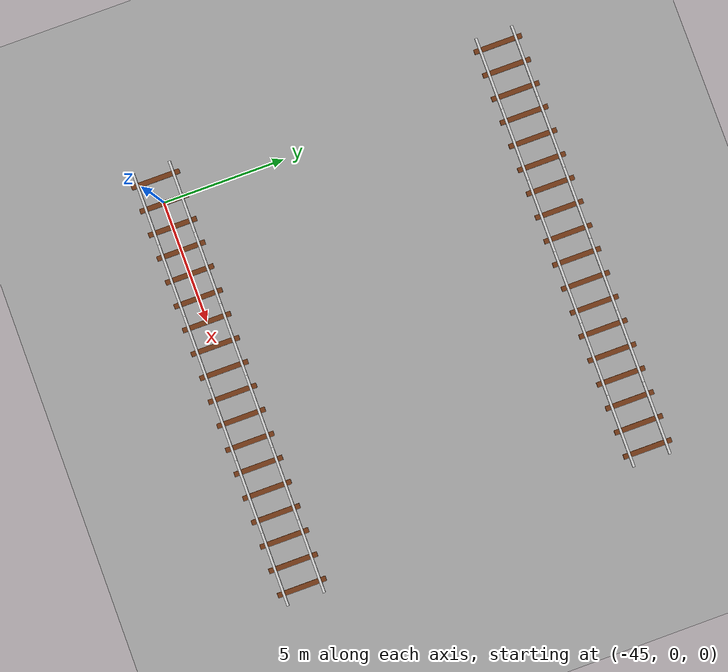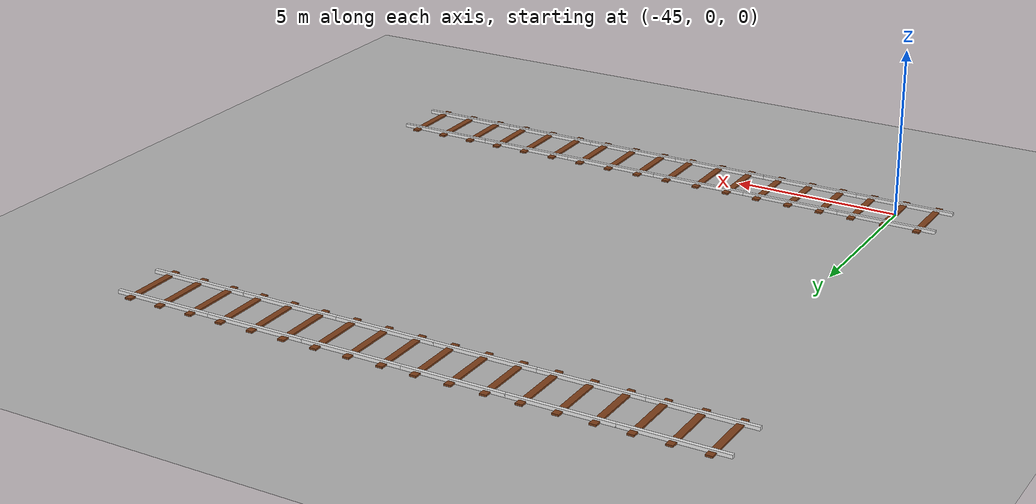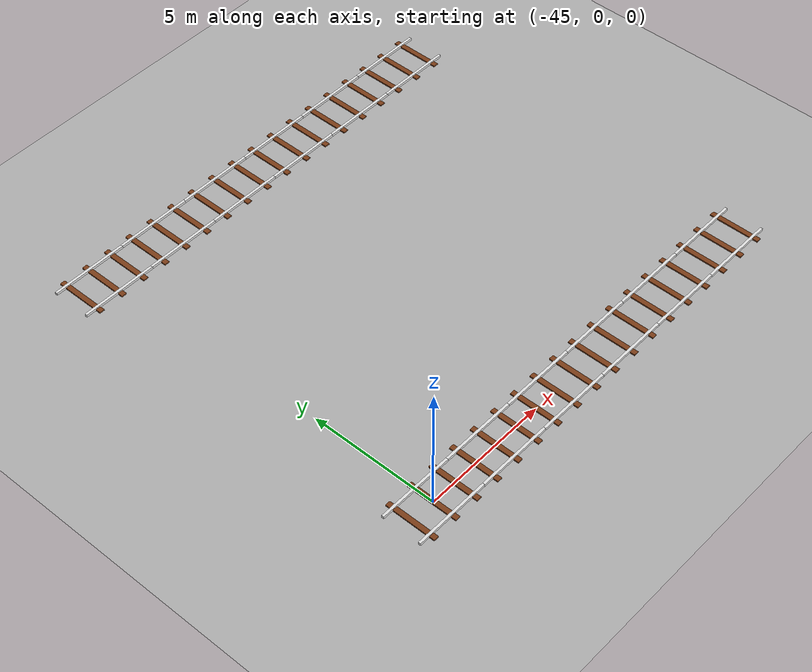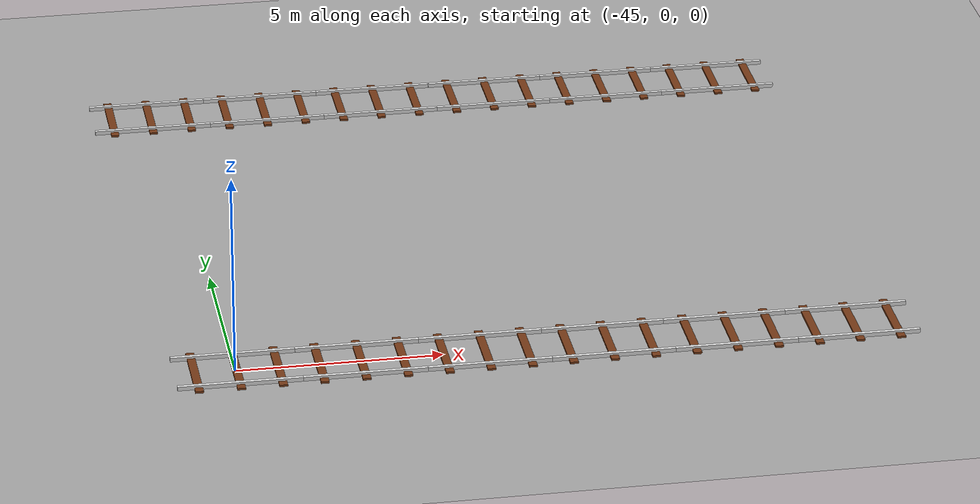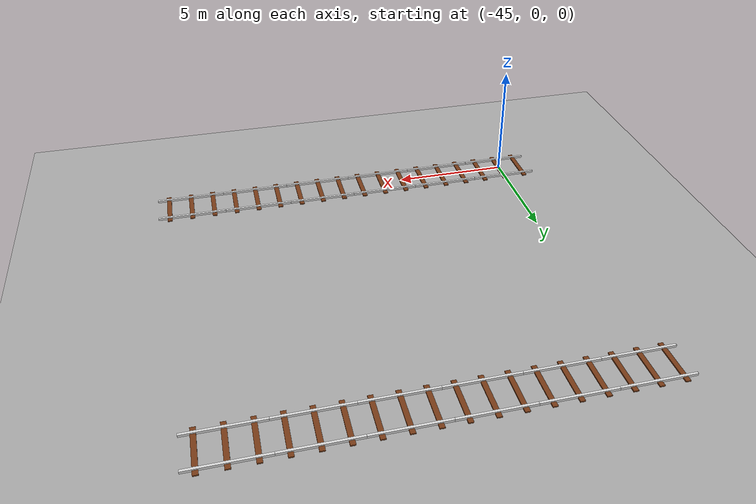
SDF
<sdf version="1.10">
 <world name="myworld">
  <model name="rail-1">
   <static>true</static>
   <pose>-36 0 0 0 0 0</pose>
   <link name="rail_link">
    <visual name="rail_left">
     <pose>0 0.75 0.050000000000000003 0 0 0</pose>
     <geometry><box><size>3 0.10000000000000001 0.10000000000000001</size></box></geometry>
     <material>
      <ambient>0.800000012 0.800000012 0.800000012 1</ambient>
      <diffuse>0.899999976 0.899999976 0.899999976 1</diffuse>
     </material>
    </visual>
    <visual name="rail_right">
     <pose>0 -0.75 0.050000000000000003 0 0 0</pose>
     <geometry><box><size>3 0.10000000000000001 0.10000000000000001</size></box></geometry>
     <material>
      <ambient>0.800000012 0.800000012 0.800000012 1</ambient>
      <diffuse>0.899999976 0.899999976 0.899999976 1</diffuse>
     </material>
    </visual>
    <visual name="traverse_1">
     <pose>1 0 0.025000000000000001 0 0 0</pose>
     <geometry><box><size>0.20000000000000001 2 0.050000000000000003</size></box></geometry>
     <material>
      <ambient>0.400000006 0.200000003 0.100000001 1</ambient>
      <diffuse>0.5 0.25 0.100000001 1</diffuse>
     </material>
    </visual>
    <visual name="traverse_2">
     <pose>0 0 0.025000000000000001 0 0 0</pose>
     <geometry><box><size>0.20000000000000001 2 0.050000000000000003</size></box></geometry>
     <material>
      <ambient>0.400000006 0.200000003 0.100000001 1</ambient>
      <diffuse>0.5 0.25 0.100000001 1</diffuse>
     </material>
    </visual>
    <visual name="traverse_3">
     <pose>-1 0 0.025000000000000001 0 0 0</pose>
     <geometry><box><size>0.20000000000000001 2 0.050000000000000003</size></box></geometry>
     <material>
      <ambient>0.400000006 0.200000003 0.100000001 1</ambient>
      <diffuse>0.5 0.25 0.100000001 1</diffuse>
     </material>
    </visual>
    <inertial>
     <mass>1</mass>
     <inertia><ixx>1</ixx><ixy>0</ixy><ixz>0</ixz><iyy>1</iyy><iyz>0</iyz><izz>1</izz></inertia>
    </inertial>
   </link>
  </model>
  <model name="rail-11">
   <static>true</static>
   <pose>-30 0 0 0 0 0</pose>
   <link name="rail_link">
    <visual name="rail_left">
     <pose>0 0.75 0.050000000000000003 0 0 0</pose>
     <geometry><box><size>3 0.10000000000000001 0.10000000000000001</size></box></geometry>
     <material>
      <ambient>0.800000012 0.800000012 0.800000012 1</ambient>
      <diffuse>0.899999976 0.899999976 0.899999976 1</diffuse>
     </material>
    </visual>
    <visual name="rail_right">
     <pose>0 -0.75 0.050000000000000003 0 0 0</pose>
     <geometry><box><size>3 0.10000000000000001 0.10000000000000001</size></box></geometry>
     <material>
      <ambient>0.800000012 0.800000012 0.800000012 1</ambient>
      <diffuse>0.899999976 0.899999976 0.899999976 1</diffuse>
     </material>
    </visual>
    <visual name="traverse_1">
     <pose>1 0 0.025000000000000001 0 0 0</pose>
     <geometry><box><size>0.20000000000000001 2 0.050000000000000003</size></box></geometry>
     <material>
      <ambient>0.400000006 0.200000003 0.100000001 1</ambient>
      <diffuse>0.5 0.25 0.100000001 1</diffuse>
     </material>
    </visual>
    <visual name="traverse_2">
     <pose>0 0 0.025000000000000001 0 0 0</pose>
     <geometry><box><size>0.20000000000000001 2 0.050000000000000003</size></box></geometry>
     <material>
      <ambient>0.400000006 0.200000003 0.100000001 1</ambient>
      <diffuse>0.5 0.25 0.100000001 1</diffuse>
     </material>
    </visual>
    <visual name="traverse_3">
     <pose>-1 0 0.025000000000000001 0 0 0</pose>
     <geometry><box><size>0.20000000000000001 2 0.050000000000000003</size></box></geometry>
     <material>
      <ambient>0.400000006 0.200000003 0.100000001 1</ambient>
      <diffuse>0.5 0.25 0.100000001 1</diffuse>
     </material>
    </visual>
    <inertial>
     <mass>1</mass>
     <inertia><ixx>1</ixx><ixy>0</ixy><ixz>0</ixz><iyy>1</iyy><iyz>0</iyz><izz>1</izz></inertia>
    </inertial>
   </link>
  </model>
  <model name="rail-12">
   <static>true</static>
   <pose>-33 0 0 0 0 0</pose>
   <link name="rail_link">
    <visual name="rail_left">
     <pose>0 0.75 0.050000000000000003 0 0 0</pose>
     <geometry><box><size>3 0.10000000000000001 0.10000000000000001</size></box></geometry>
     <material>
      <ambient>0.800000012 0.800000012 0.800000012 1</ambient>
      <diffuse>0.899999976 0.899999976 0.899999976 1</diffuse>
     </material>
    </visual>
    <visual name="rail_right">
     <pose>0 -0.75 0.050000000000000003 0 0 0</pose>
     <geometry><box><size>3 0.10000000000000001 0.10000000000000001</size></box></geometry>
     <material>
      <ambient>0.800000012 0.800000012 0.800000012 1</ambient>
      <diffuse>0.899999976 0.899999976 0.899999976 1</diffuse>
     </material>
    </visual>
    <visual name="traverse_1">
     <pose>1 0 0.025000000000000001 0 0 0</pose>
     <geometry><box><size>0.20000000000000001 2 0.050000000000000003</size></box></geometry>
     <material>
      <ambient>0.400000006 0.200000003 0.100000001 1</ambient>
      <diffuse>0.5 0.25 0.100000001 1</diffuse>
     </material>
    </visual>
    <visual name="traverse_2">
     <pose>0 0 0.025000000000000001 0 0 0</pose>
     <geometry><box><size>0.20000000000000001 2 0.050000000000000003</size></box></geometry>
     <material>
      <ambient>0.400000006 0.200000003 0.100000001 1</ambient>
      <diffuse>0.5 0.25 0.100000001 1</diffuse>
     </material>
    </visual>
    <visual name="traverse_3">
     <pose>-1 0 0.025000000000000001 0 0 0</pose>
     <geometry><box><size>0.20000000000000001 2 0.050000000000000003</size></box></geometry>
     <material>
      <ambient>0.400000006 0.200000003 0.100000001 1</ambient>
      <diffuse>0.5 0.25 0.100000001 1</diffuse>
     </material>
    </visual>
    <inertial>
     <mass>1</mass>
     <inertia><ixx>1</ixx><ixy>0</ixy><ixz>0</ixz><iyy>1</iyy><iyz>0</iyz><izz>1</izz></inertia>
    </inertial>
   </link>
  </model>
  <model name="ground_plane">
   <static>true</static>
   <link name="link">
    <collision name="collision">
     <geometry><plane><normal>0 0 1</normal><size>1000 1000</size></plane></geometry>
    </collision>
    <visual name="visual">
     <geometry><plane><normal>0 0 1</normal><size>1000 1000</size></plane></geometry>
     <material>
      <ambient>0.699999988 0.699999988 0.699999988 1</ambient>
      <diffuse>0.699999988 0.699999988 0.699999988 1</diffuse>
     </material>
    </visual>
    <inertial>
     <mass>1</mass>
     <inertia><ixx>1</ixx><ixy>0</ixy><ixz>0</ixz><iyy>1</iyy><iyz>0</iyz><izz>1</izz></inertia>
    </inertial>
   </link>
  </model>
  <model name="rail1_7_2_13">
   <static>true</static>
   <pose>-30.438199999999998 14.5296200000000004 0 0 0 0</pose>
   <link name="rail_link">
    <visual name="rail_left">
     <pose>0 0.75 0.050000000000000003 0 0 0</pose>
     <geometry><box><size>3 0.10000000000000001 0.10000000000000001</size></box></geometry>
     <material>
      <ambient>0.800000012 0.800000012 0.800000012 1</ambient>
      <diffuse>0.899999976 0.899999976 0.899999976 1</diffuse>
     </material>
    </visual>
    <visual name="rail_right">
     <pose>0 -0.75 0.050000000000000003 0 0 0</pose>
     <geometry><box><size>3 0.10000000000000001 0.10000000000000001</size></box></geometry>
     <material>
      <ambient>0.800000012 0.800000012 0.800000012 1</ambient>
      <diffuse>0.899999976 0.899999976 0.899999976 1</diffuse>
     </material>
    </visual>
    <visual name="traverse_1">
     <pose>1 0 0.025000000000000001 0 0 0</pose>
     <geometry><box><size>0.20000000000000001 2 0.050000000000000003</size></box></geometry>
     <material>
      <ambient>0.400000006 0.200000003 0.100000001 1</ambient>
      <diffuse>0.5 0.25 0.100000001 1</diffuse>
     </material>
    </visual>
    <visual name="traverse_2">
     <pose>0 0 0.025000000000000001 0 0 0</pose>
     <geometry><box><size>0.20000000000000001 2 0.050000000000000003</size></box></geometry>
     <material>
      <ambient>0.400000006 0.200000003 0.100000001 1</ambient>
      <diffuse>0.5 0.25 0.100000001 1</diffuse>
     </material>
    </visual>
    <visual name="traverse_3">
     <pose>-1 0 0.025000000000000001 0 0 0</pose>
     <geometry><box><size>0.20000000000000001 2 0.050000000000000003</size></box></geometry>
     <material>
      <ambient>0.400000006 0.200000003 0.100000001 1</ambient>
      <diffuse>0.5 0.25 0.100000001 1</diffuse>
     </material>
    </visual>
   </link>
  </model>
  <model name="rail1_7_2_14">
   <static>true</static>
   <pose>-33.431399999999996 14.5290800000000004 0 0 0 0</pose>
   <link name="rail_link">
    <visual name="rail_left">
     <pose>0 0.75 0.050000000000000003 0 0 0</pose>
     <geometry><box><size>3 0.10000000000000001 0.10000000000000001</size></box></geometry>
     <material>
      <ambient>0.800000012 0.800000012 0.800000012 1</ambient>
      <diffuse>0.899999976 0.899999976 0.899999976 1</diffuse>
     </material>
    </visual>
    <visual name="rail_right">
     <pose>0 -0.75 0.050000000000000003 0 0 0</pose>
     <geometry><box><size>3 0.10000000000000001 0.10000000000000001</size></box></geometry>
     <material>
      <ambient>0.800000012 0.800000012 0.800000012 1</ambient>
      <diffuse>0.899999976 0.899999976 0.899999976 1</diffuse>
     </material>
    </visual>
    <visual name="traverse_1">
     <pose>1 0 0.025000000000000001 0 0 0</pose>
     <geometry><box><size>0.20000000000000001 2 0.050000000000000003</size></box></geometry>
     <material>
      <ambient>0.400000006 0.200000003 0.100000001 1</ambient>
      <diffuse>0.5 0.25 0.100000001 1</diffuse>
     </material>
    </visual>
    <visual name="traverse_2">
     <pose>0 0 0.025000000000000001 0 0 0</pose>
     <geometry><box><size>0.20000000000000001 2 0.050000000000000003</size></box></geometry>
     <material>
      <ambient>0.400000006 0.200000003 0.100000001 1</ambient>
      <diffuse>0.5 0.25 0.100000001 1</diffuse>
     </material>
    </visual>
    <visual name="traverse_3">
     <pose>-1 0 0.025000000000000001 0 0 0</pose>
     <geometry><box><size>0.20000000000000001 2 0.050000000000000003</size></box></geometry>
     <material>
      <ambient>0.400000006 0.200000003 0.100000001 1</ambient>
      <diffuse>0.5 0.25 0.100000001 1</diffuse>
     </material>
    </visual>
   </link>
  </model>
  <model name="rail1_7_2_15">
   <static>true</static>
   <pose>-36.427700000000002 14.5297599999999996 0 0 0 0</pose>
   <link name="rail_link">
    <visual name="rail_left">
     <pose>0 0.75 0.050000000000000003 0 0 0</pose>
     <geometry><box><size>3 0.10000000000000001 0.10000000000000001</size></box></geometry>
     <material>
      <ambient>0.800000012 0.800000012 0.800000012 1</ambient>
      <diffuse>0.899999976 0.899999976 0.899999976 1</diffuse>
     </material>
    </visual>
    <visual name="rail_right">
     <pose>0 -0.75 0.050000000000000003 0 0 0</pose>
     <geometry><box><size>3 0.10000000000000001 0.10000000000000001</size></box></geometry>
     <material>
      <ambient>0.800000012 0.800000012 0.800000012 1</ambient>
      <diffuse>0.899999976 0.899999976 0.899999976 1</diffuse>
     </material>
    </visual>
    <visual name="traverse_1">
     <pose>1 0 0.025000000000000001 0 0 0</pose>
     <geometry><box><size>0.20000000000000001 2 0.050000000000000003</size></box></geometry>
     <material>
      <ambient>0.400000006 0.200000003 0.100000001 1</ambient>
      <diffuse>0.5 0.25 0.100000001 1</diffuse>
     </material>
    </visual>
    <visual name="traverse_2">
     <pose>0 0 0.025000000000000001 0 0 0</pose>
     <geometry><box><size>0.20000000000000001 2 0.050000000000000003</size></box></geometry>
     <material>
      <ambient>0.400000006 0.200000003 0.100000001 1</ambient>
      <diffuse>0.5 0.25 0.100000001 1</diffuse>
     </material>
    </visual>
    <visual name="traverse_3">
     <pose>-1 0 0.025000000000000001 0 0 0</pose>
     <geometry><box><size>0.20000000000000001 2 0.050000000000000003</size></box></geometry>
     <material>
      <ambient>0.400000006 0.200000003 0.100000001 1</ambient>
      <diffuse>0.5 0.25 0.100000001 1</diffuse>
     </material>
    </visual>
   </link>
  </model>
  <model name="rail1_7_2_16">
   <static>true</static>
   <pose>-39.4193 14.5312700000000001 0 0 0 0</pose>
   <link name="rail_link">
    <visual name="rail_left">
     <pose>0 0.75 0.050000000000000003 0 0 0</pose>
     <geometry><box><size>3 0.10000000000000001 0.10000000000000001</size></box></geometry>
     <material>
      <ambient>0.800000012 0.800000012 0.800000012 1</ambient>
      <diffuse>0.899999976 0.899999976 0.899999976 1</diffuse>
     </material>
    </visual>
    <visual name="rail_right">
     <pose>0 -0.75 0.050000000000000003 0 0 0</pose>
     <geometry><box><size>3 0.10000000000000001 0.10000000000000001</size></box></geometry>
     <material>
      <ambient>0.800000012 0.800000012 0.800000012 1</ambient>
      <diffuse>0.899999976 0.899999976 0.899999976 1</diffuse>
     </material>
    </visual>
    <visual name="traverse_1">
     <pose>1 0 0.025000000000000001 0 0 0</pose>
     <geometry><box><size>0.20000000000000001 2 0.050000000000000003</size></box></geometry>
     <material>
      <ambient>0.400000006 0.200000003 0.100000001 1</ambient>
      <diffuse>0.5 0.25 0.100000001 1</diffuse>
     </material>
    </visual>
    <visual name="traverse_2">
     <pose>0 0 0.025000000000000001 0 0 0</pose>
     <geometry><box><size>0.20000000000000001 2 0.050000000000000003</size></box></geometry>
     <material>
      <ambient>0.400000006 0.200000003 0.100000001 1</ambient>
      <diffuse>0.5 0.25 0.100000001 1</diffuse>
     </material>
    </visual>
    <visual name="traverse_3">
     <pose>-1 0 0.025000000000000001 0 0 0</pose>
     <geometry><box><size>0.20000000000000001 2 0.050000000000000003</size></box></geometry>
     <material>
      <ambient>0.400000006 0.200000003 0.100000001 1</ambient>
      <diffuse>0.5 0.25 0.100000001 1</diffuse>
     </material>
    </visual>
   </link>
  </model>
  <model name="rail1_7_2_17">
   <static>true</static>
   <pose>-38.991500000000002 -0.00104874 0 0 0 0</pose>
   <link name="rail_link">
    <visual name="rail_left">
     <pose>0 0.75 0.050000000000000003 0 0 0</pose>
     <geometry><box><size>3 0.10000000000000001 0.10000000000000001</size></box></geometry>
     <material>
      <ambient>0.800000012 0.800000012 0.800000012 1</ambient>
      <diffuse>0.899999976 0.899999976 0.899999976 1</diffuse>
     </material>
    </visual>
    <visual name="rail_right">
     <pose>0 -0.75 0.050000000000000003 0 0 0</pose>
     <geometry><box><size>3 0.10000000000000001 0.10000000000000001</size></box></geometry>
     <material>
      <ambient>0.800000012 0.800000012 0.800000012 1</ambient>
      <diffuse>0.899999976 0.899999976 0.899999976 1</diffuse>
     </material>
    </visual>
    <visual name="traverse_1">
     <pose>1 0 0.025000000000000001 0 0 0</pose>
     <geometry><box><size>0.20000000000000001 2 0.050000000000000003</size></box></geometry>
     <material>
      <ambient>0.400000006 0.200000003 0.100000001 1</ambient>
      <diffuse>0.5 0.25 0.100000001 1</diffuse>
     </material>
    </visual>
    <visual name="traverse_2">
     <pose>0 0 0.025000000000000001 0 0 0</pose>
     <geometry><box><size>0.20000000000000001 2 0.050000000000000003</size></box></geometry>
     <material>
      <ambient>0.400000006 0.200000003 0.100000001 1</ambient>
      <diffuse>0.5 0.25 0.100000001 1</diffuse>
     </material>
    </visual>
    <visual name="traverse_3">
     <pose>-1 0 0.025000000000000001 0 0 0</pose>
     <geometry><box><size>0.20000000000000001 2 0.050000000000000003</size></box></geometry>
     <material>
      <ambient>0.400000006 0.200000003 0.100000001 1</ambient>
      <diffuse>0.5 0.25 0.100000001 1</diffuse>
     </material>
    </visual>
   </link>
  </model>
  <model name="rail1_7_2_18">
   <static>true</static>
   <pose>-42.418199999999999 14.5311199999999996 0 0 0 0</pose>
   <link name="rail_link">
    <visual name="rail_left">
     <pose>0 0.75 0.050000000000000003 0 0 0</pose>
     <geometry><box><size>3 0.10000000000000001 0.10000000000000001</size></box></geometry>
     <material>
      <ambient>0.800000012 0.800000012 0.800000012 1</ambient>
      <diffuse>0.899999976 0.899999976 0.899999976 1</diffuse>
     </material>
    </visual>
    <visual name="rail_right">
     <pose>0 -0.75 0.050000000000000003 0 0 0</pose>
     <geometry><box><size>3 0.10000000000000001 0.10000000000000001</size></box></geometry>
     <material>
      <ambient>0.800000012 0.800000012 0.800000012 1</ambient>
      <diffuse>0.899999976 0.899999976 0.899999976 1</diffuse>
     </material>
    </visual>
    <visual name="traverse_1">
     <pose>1 0 0.025000000000000001 0 0 0</pose>
     <geometry><box><size>0.20000000000000001 2 0.050000000000000003</size></box></geometry>
     <material>
      <ambient>0.400000006 0.200000003 0.100000001 1</ambient>
      <diffuse>0.5 0.25 0.100000001 1</diffuse>
     </material>
    </visual>
    <visual name="traverse_2">
     <pose>0 0 0.025000000000000001 0 0 0</pose>
     <geometry><box><size>0.20000000000000001 2 0.050000000000000003</size></box></geometry>
     <material>
      <ambient>0.400000006 0.200000003 0.100000001 1</ambient>
      <diffuse>0.5 0.25 0.100000001 1</diffuse>
     </material>
    </visual>
    <visual name="traverse_3">
     <pose>-1 0 0.025000000000000001 0 0 0</pose>
     <geometry><box><size>0.20000000000000001 2 0.050000000000000003</size></box></geometry>
     <material>
      <ambient>0.400000006 0.200000003 0.100000001 1</ambient>
      <diffuse>0.5 0.25 0.100000001 1</diffuse>
     </material>
    </visual>
   </link>
  </model>
  <model name="rail1_7_2_19">
   <static>true</static>
   <pose>-41.9861 -9.8596099999999996e-05 0 0 0 0</pose>
   <link name="rail_link">
    <visual name="rail_left">
     <pose>0 0.75 0.050000000000000003 0 0 0</pose>
     <geometry><box><size>3 0.10000000000000001 0.10000000000000001</size></box></geometry>
     <material>
      <ambient>0.800000012 0.800000012 0.800000012 1</ambient>
      <diffuse>0.899999976 0.899999976 0.899999976 1</diffuse>
     </material>
    </visual>
    <visual name="rail_right">
     <pose>0 -0.75 0.050000000000000003 0 0 0</pose>
     <geometry><box><size>3 0.10000000000000001 0.10000000000000001</size></box></geometry>
     <material>
      <ambient>0.800000012 0.800000012 0.800000012 1</ambient>
      <diffuse>0.899999976 0.899999976 0.899999976 1</diffuse>
     </material>
    </visual>
    <visual name="traverse_1">
     <pose>1 0 0.025000000000000001 0 0 0</pose>
     <geometry><box><size>0.20000000000000001 2 0.050000000000000003</size></box></geometry>
     <material>
      <ambient>0.400000006 0.200000003 0.100000001 1</ambient>
      <diffuse>0.5 0.25 0.100000001 1</diffuse>
     </material>
    </visual>
    <visual name="traverse_2">
     <pose>0 0 0.025000000000000001 0 0 0</pose>
     <geometry><box><size>0.20000000000000001 2 0.050000000000000003</size></box></geometry>
     <material>
      <ambient>0.400000006 0.200000003 0.100000001 1</ambient>
      <diffuse>0.5 0.25 0.100000001 1</diffuse>
     </material>
    </visual>
    <visual name="traverse_3">
     <pose>-1 0 0.025000000000000001 0 0 0</pose>
     <geometry><box><size>0.20000000000000001 2 0.050000000000000003</size></box></geometry>
     <material>
      <ambient>0.400000006 0.200000003 0.100000001 1</ambient>
      <diffuse>0.5 0.25 0.100000001 1</diffuse>
     </material>
    </visual>
   </link>
  </model>
  <model name="rail1_7_2_20">
   <static>true</static>
   <pose>-45.4114 14.5296500000000002 0 0 0 0</pose>
   <link name="rail_link">
    <visual name="rail_left">
     <pose>0 0.75 0.050000000000000003 0 0 0</pose>
     <geometry><box><size>3 0.10000000000000001 0.10000000000000001</size></box></geometry>
     <material>
      <ambient>0.800000012 0.800000012 0.800000012 1</ambient>
      <diffuse>0.899999976 0.899999976 0.899999976 1</diffuse>
     </material>
    </visual>
    <visual name="rail_right">
     <pose>0 -0.75 0.050000000000000003 0 0 0</pose>
     <geometry><box><size>3 0.10000000000000001 0.10000000000000001</size></box></geometry>
     <material>
      <ambient>0.800000012 0.800000012 0.800000012 1</ambient>
      <diffuse>0.899999976 0.899999976 0.899999976 1</diffuse>
     </material>
    </visual>
    <visual name="traverse_1">
     <pose>1 0 0.025000000000000001 0 0 0</pose>
     <geometry><box><size>0.20000000000000001 2 0.050000000000000003</size></box></geometry>
     <material>
      <ambient>0.400000006 0.200000003 0.100000001 1</ambient>
      <diffuse>0.5 0.25 0.100000001 1</diffuse>
     </material>
    </visual>
    <visual name="traverse_2">
     <pose>0 0 0.025000000000000001 0 0 0</pose>
     <geometry><box><size>0.20000000000000001 2 0.050000000000000003</size></box></geometry>
     <material>
      <ambient>0.400000006 0.200000003 0.100000001 1</ambient>
      <diffuse>0.5 0.25 0.100000001 1</diffuse>
     </material>
    </visual>
    <visual name="traverse_3">
     <pose>-1 0 0.025000000000000001 0 0 0</pose>
     <geometry><box><size>0.20000000000000001 2 0.050000000000000003</size></box></geometry>
     <material>
      <ambient>0.400000006 0.200000003 0.100000001 1</ambient>
      <diffuse>0.5 0.25 0.100000001 1</diffuse>
     </material>
    </visual>
   </link>
  </model>
  <model name="rail1_7_2_21">
   <static>true</static>
   <pose>-44.975200000000001 -0.000136532 0 0 0 0</pose>
   <link name="rail_link">
    <visual name="rail_left">
     <pose>0 0.75 0.050000000000000003 0 0 0</pose>
     <geometry><box><size>3 0.10000000000000001 0.10000000000000001</size></box></geometry>
     <material>
      <ambient>0.800000012 0.800000012 0.800000012 1</ambient>
      <diffuse>0.899999976 0.899999976 0.899999976 1</diffuse>
     </material>
    </visual>
    <visual name="rail_right">
     <pose>0 -0.75 0.050000000000000003 0 0 0</pose>
     <geometry><box><size>3 0.10000000000000001 0.10000000000000001</size></box></geometry>
     <material>
      <ambient>0.800000012 0.800000012 0.800000012 1</ambient>
      <diffuse>0.899999976 0.899999976 0.899999976 1</diffuse>
     </material>
    </visual>
    <visual name="traverse_1">
     <pose>1 0 0.025000000000000001 0 0 0</pose>
     <geometry><box><size>0.20000000000000001 2 0.050000000000000003</size></box></geometry>
     <material>
      <ambient>0.400000006 0.200000003 0.100000001 1</ambient>
      <diffuse>0.5 0.25 0.100000001 1</diffuse>
     </material>
    </visual>
    <visual name="traverse_2">
     <pose>0 0 0.025000000000000001 0 0 0</pose>
     <geometry><box><size>0.20000000000000001 2 0.050000000000000003</size></box></geometry>
     <material>
      <ambient>0.400000006 0.200000003 0.100000001 1</ambient>
      <diffuse>0.5 0.25 0.100000001 1</diffuse>
     </material>
    </visual>
    <visual name="traverse_3">
     <pose>-1 0 0.025000000000000001 0 0 0</pose>
     <geometry><box><size>0.20000000000000001 2 0.050000000000000003</size></box></geometry>
     <material>
      <ambient>0.400000006 0.200000003 0.100000001 1</ambient>
      <diffuse>0.5 0.25 0.100000001 1</diffuse>
     </material>
    </visual>
   </link>
  </model>
 </world>
</sdf>
